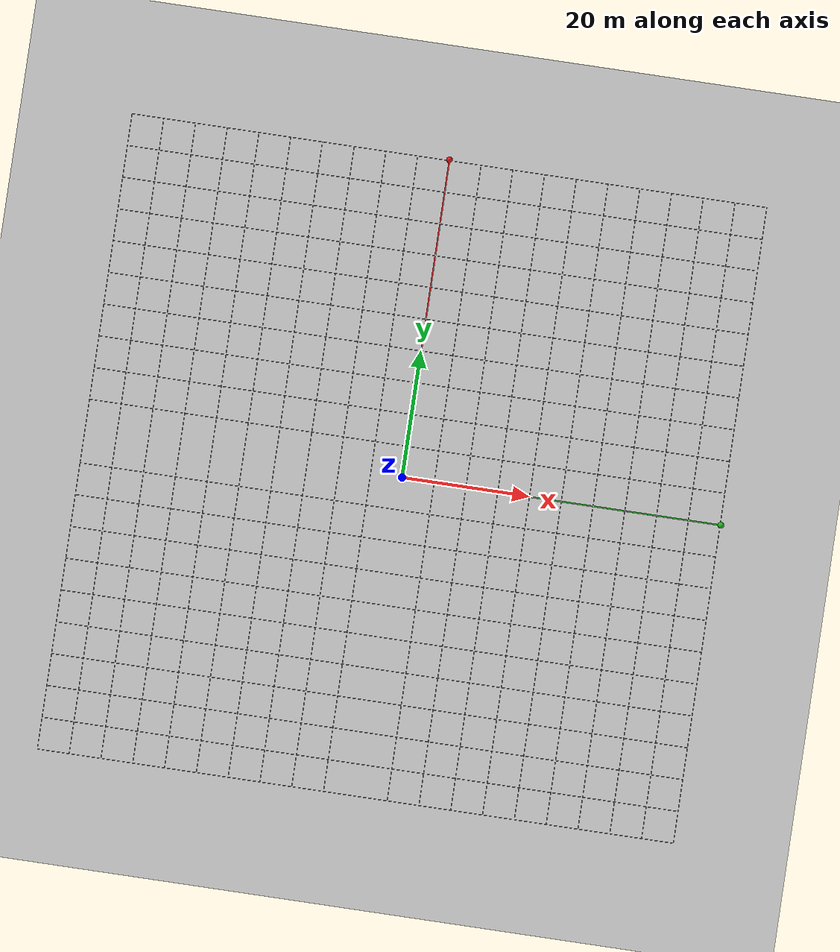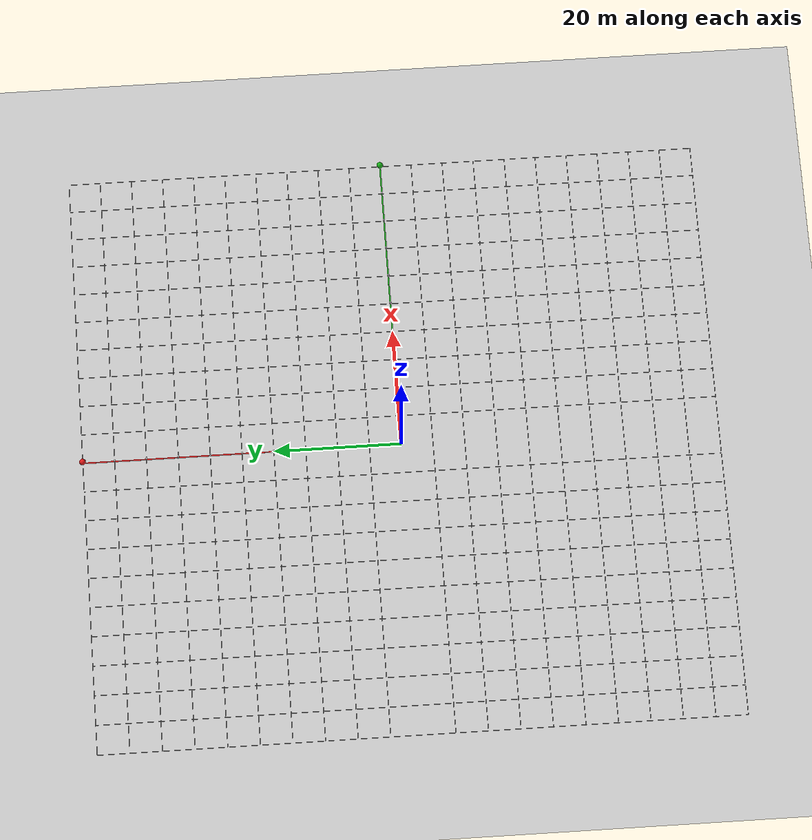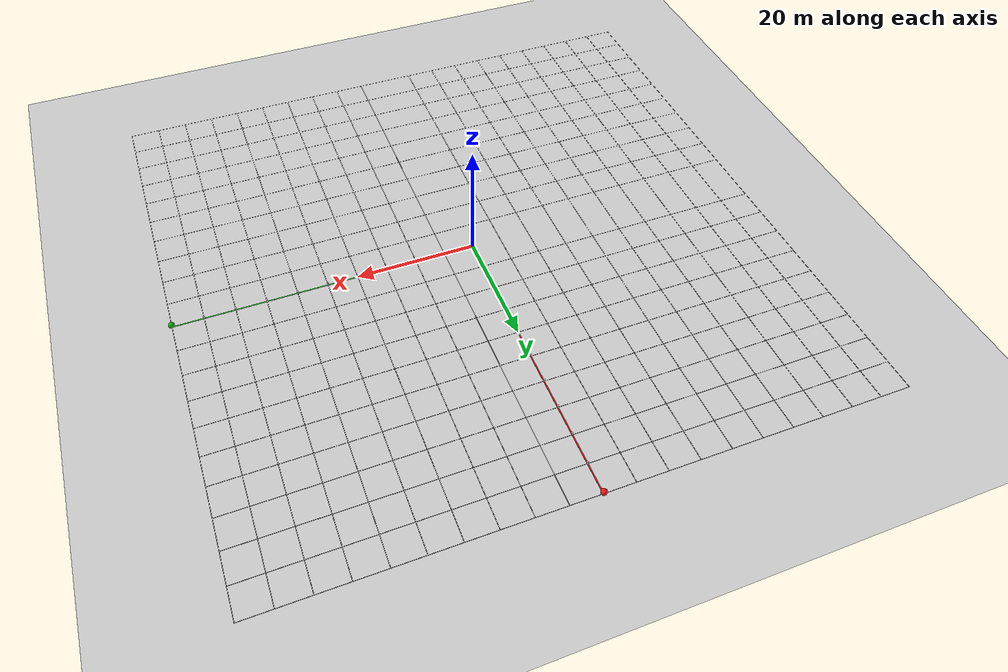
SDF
<?xml version="1.0" encoding="UTF-8"?>
<sdf version="1.9">
  <world name="trajectory_grid">
    <physics type="ode">
      <max_step_size>0.004</max_step_size>
      <real_time_factor>1.0</real_time_factor>
      <real_time_update_rate>250</real_time_update_rate>
    </physics>
    <gravity>0 0 -9.8</gravity>
    <magnetic_field>6e-06 2.3e-05 -4.2e-05</magnetic_field>
    <atmosphere type="adiabatic"/>
    <scene>
      <grid>false</grid>
      <ambient>0.5 0.5 0.5 1</ambient>
      <background>0.53 0.75 0.93 1</background>
      <shadows>true</shadows>
    </scene>
    <model name="ground_plane">
      <static>true</static>
      <link name="link">
        <collision name="collision">
          <geometry><plane><normal>0 0 1</normal><size>1 1</size></plane></geometry>
        </collision>
        <visual name="visual">
          <geometry><plane><normal>0 0 1</normal><size>500 500</size></plane></geometry>
          <material>
            <ambient>0.8 0.8 0.8 1</ambient><diffuse>0.8 0.8 0.8 1</diffuse>
            <specular>0.1 0.1 0.1 1</specular>
          </material>
        </visual>
      </link>
    </model>
    <light name="sunUTC" type="directional">
      <pose>0 0 500 0 -0 0</pose>
      <cast_shadows>true</cast_shadows>
      <intensity>1</intensity>
      <direction>0.001 0.625 -0.78</direction>
      <diffuse>0.904 0.904 0.904 1</diffuse>
      <specular>0.271 0.271 0.271 1</specular>
    </light>
    <spherical_coordinates>
      <surface_model>EARTH_WGS84</surface_model>
      <world_frame_orientation>ENU</world_frame_orientation>
      <latitude_deg>47.397971057728974</latitude_deg>
      <longitude_deg>8.546163739800146</longitude_deg>
      <elevation>488</elevation>
    </spherical_coordinates>
    <model name="grid_e_1"><static>true</static><pose>-50.000 0.000 0.005 0 0 0</pose>
      <link name="l"><visual name="v"><geometry><box><size>0.06 100 0.01</size></box></geometry>
        <material><ambient>0.35 0.35 0.35 1</ambient><diffuse>0.35 0.35 0.35 1</diffuse><emissive>0.35 0.35 0.35 1</emissive></material>
      </visual></link></model>
    <model name="grid_n_2"><static>true</static><pose>0.000 -50.000 0.005 0 0 0</pose>
      <link name="l"><visual name="v"><geometry><box><size>100 0.06 0.01</size></box></geometry>
        <material><ambient>0.35 0.35 0.35 1</ambient><diffuse>0.35 0.35 0.35 1</diffuse><emissive>0.35 0.35 0.35 1</emissive></material>
      </visual></link></model>
    <model name="grid_e_3"><static>true</static><pose>-45.000 0.000 0.005 0 0 0</pose>
      <link name="l"><visual name="v"><geometry><box><size>0.06 100 0.01</size></box></geometry>
        <material><ambient>0.35 0.35 0.35 1</ambient><diffuse>0.35 0.35 0.35 1</diffuse><emissive>0.35 0.35 0.35 1</emissive></material>
      </visual></link></model>
    <model name="grid_n_4"><static>true</static><pose>0.000 -45.000 0.005 0 0 0</pose>
      <link name="l"><visual name="v"><geometry><box><size>100 0.06 0.01</size></box></geometry>
        <material><ambient>0.35 0.35 0.35 1</ambient><diffuse>0.35 0.35 0.35 1</diffuse><emissive>0.35 0.35 0.35 1</emissive></material>
      </visual></link></model>
    <model name="grid_e_5"><static>true</static><pose>-40.000 0.000 0.005 0 0 0</pose>
      <link name="l"><visual name="v"><geometry><box><size>0.06 100 0.01</size></box></geometry>
        <material><ambient>0.35 0.35 0.35 1</ambient><diffuse>0.35 0.35 0.35 1</diffuse><emissive>0.35 0.35 0.35 1</emissive></material>
      </visual></link></model>
    <model name="grid_n_6"><static>true</static><pose>0.000 -40.000 0.005 0 0 0</pose>
      <link name="l"><visual name="v"><geometry><box><size>100 0.06 0.01</size></box></geometry>
        <material><ambient>0.35 0.35 0.35 1</ambient><diffuse>0.35 0.35 0.35 1</diffuse><emissive>0.35 0.35 0.35 1</emissive></material>
      </visual></link></model>
    <model name="grid_e_7"><static>true</static><pose>-35.000 0.000 0.005 0 0 0</pose>
      <link name="l"><visual name="v"><geometry><box><size>0.06 100 0.01</size></box></geometry>
        <material><ambient>0.35 0.35 0.35 1</ambient><diffuse>0.35 0.35 0.35 1</diffuse><emissive>0.35 0.35 0.35 1</emissive></material>
      </visual></link></model>
    <model name="grid_n_8"><static>true</static><pose>0.000 -35.000 0.005 0 0 0</pose>
      <link name="l"><visual name="v"><geometry><box><size>100 0.06 0.01</size></box></geometry>
        <material><ambient>0.35 0.35 0.35 1</ambient><diffuse>0.35 0.35 0.35 1</diffuse><emissive>0.35 0.35 0.35 1</emissive></material>
      </visual></link></model>
    <model name="grid_e_9"><static>true</static><pose>-30.000 0.000 0.005 0 0 0</pose>
      <link name="l"><visual name="v"><geometry><box><size>0.06 100 0.01</size></box></geometry>
        <material><ambient>0.35 0.35 0.35 1</ambient><diffuse>0.35 0.35 0.35 1</diffuse><emissive>0.35 0.35 0.35 1</emissive></material>
      </visual></link></model>
    <model name="grid_n_10"><static>true</static><pose>0.000 -30.000 0.005 0 0 0</pose>
      <link name="l"><visual name="v"><geometry><box><size>100 0.06 0.01</size></box></geometry>
        <material><ambient>0.35 0.35 0.35 1</ambient><diffuse>0.35 0.35 0.35 1</diffuse><emissive>0.35 0.35 0.35 1</emissive></material>
      </visual></link></model>
    <model name="grid_e_11"><static>true</static><pose>-25.000 0.000 0.005 0 0 0</pose>
      <link name="l"><visual name="v"><geometry><box><size>0.06 100 0.01</size></box></geometry>
        <material><ambient>0.35 0.35 0.35 1</ambient><diffuse>0.35 0.35 0.35 1</diffuse><emissive>0.35 0.35 0.35 1</emissive></material>
      </visual></link></model>
    <model name="grid_n_12"><static>true</static><pose>0.000 -25.000 0.005 0 0 0</pose>
      <link name="l"><visual name="v"><geometry><box><size>100 0.06 0.01</size></box></geometry>
        <material><ambient>0.35 0.35 0.35 1</ambient><diffuse>0.35 0.35 0.35 1</diffuse><emissive>0.35 0.35 0.35 1</emissive></material>
      </visual></link></model>
    <model name="grid_e_13"><static>true</static><pose>-20.000 0.000 0.005 0 0 0</pose>
      <link name="l"><visual name="v"><geometry><box><size>0.06 100 0.01</size></box></geometry>
        <material><ambient>0.35 0.35 0.35 1</ambient><diffuse>0.35 0.35 0.35 1</diffuse><emissive>0.35 0.35 0.35 1</emissive></material>
      </visual></link></model>
    <model name="grid_n_14"><static>true</static><pose>0.000 -20.000 0.005 0 0 0</pose>
      <link name="l"><visual name="v"><geometry><box><size>100 0.06 0.01</size></box></geometry>
        <material><ambient>0.35 0.35 0.35 1</ambient><diffuse>0.35 0.35 0.35 1</diffuse><emissive>0.35 0.35 0.35 1</emissive></material>
      </visual></link></model>
    <model name="grid_e_15"><static>true</static><pose>-15.000 0.000 0.005 0 0 0</pose>
      <link name="l"><visual name="v"><geometry><box><size>0.06 100 0.01</size></box></geometry>
        <material><ambient>0.35 0.35 0.35 1</ambient><diffuse>0.35 0.35 0.35 1</diffuse><emissive>0.35 0.35 0.35 1</emissive></material>
      </visual></link></model>
    <model name="grid_n_16"><static>true</static><pose>0.000 -15.000 0.005 0 0 0</pose>
      <link name="l"><visual name="v"><geometry><box><size>100 0.06 0.01</size></box></geometry>
        <material><ambient>0.35 0.35 0.35 1</ambient><diffuse>0.35 0.35 0.35 1</diffuse><emissive>0.35 0.35 0.35 1</emissive></material>
      </visual></link></model>
    <model name="grid_e_17"><static>true</static><pose>-10.000 0.000 0.005 0 0 0</pose>
      <link name="l"><visual name="v"><geometry><box><size>0.06 100 0.01</size></box></geometry>
        <material><ambient>0.35 0.35 0.35 1</ambient><diffuse>0.35 0.35 0.35 1</diffuse><emissive>0.35 0.35 0.35 1</emissive></material>
      </visual></link></model>
    <model name="grid_n_18"><static>true</static><pose>0.000 -10.000 0.005 0 0 0</pose>
      <link name="l"><visual name="v"><geometry><box><size>100 0.06 0.01</size></box></geometry>
        <material><ambient>0.35 0.35 0.35 1</ambient><diffuse>0.35 0.35 0.35 1</diffuse><emissive>0.35 0.35 0.35 1</emissive></material>
      </visual></link></model>
    <model name="grid_e_19"><static>true</static><pose>-5.000 0.000 0.005 0 0 0</pose>
      <link name="l"><visual name="v"><geometry><box><size>0.06 100 0.01</size></box></geometry>
        <material><ambient>0.35 0.35 0.35 1</ambient><diffuse>0.35 0.35 0.35 1</diffuse><emissive>0.35 0.35 0.35 1</emissive></material>
      </visual></link></model>
    <model name="grid_n_20"><static>true</static><pose>0.000 -5.000 0.005 0 0 0</pose>
      <link name="l"><visual name="v"><geometry><box><size>100 0.06 0.01</size></box></geometry>
        <material><ambient>0.35 0.35 0.35 1</ambient><diffuse>0.35 0.35 0.35 1</diffuse><emissive>0.35 0.35 0.35 1</emissive></material>
      </visual></link></model>
    <model name="grid_e_21"><static>true</static><pose>5.000 0.000 0.005 0 0 0</pose>
      <link name="l"><visual name="v"><geometry><box><size>0.06 100 0.01</size></box></geometry>
        <material><ambient>0.35 0.35 0.35 1</ambient><diffuse>0.35 0.35 0.35 1</diffuse><emissive>0.35 0.35 0.35 1</emissive></material>
      </visual></link></model>
    <model name="grid_n_22"><static>true</static><pose>0.000 5.000 0.005 0 0 0</pose>
      <link name="l"><visual name="v"><geometry><box><size>100 0.06 0.01</size></box></geometry>
        <material><ambient>0.35 0.35 0.35 1</ambient><diffuse>0.35 0.35 0.35 1</diffuse><emissive>0.35 0.35 0.35 1</emissive></material>
      </visual></link></model>
    <model name="grid_e_23"><static>true</static><pose>10.000 0.000 0.005 0 0 0</pose>
      <link name="l"><visual name="v"><geometry><box><size>0.06 100 0.01</size></box></geometry>
        <material><ambient>0.35 0.35 0.35 1</ambient><diffuse>0.35 0.35 0.35 1</diffuse><emissive>0.35 0.35 0.35 1</emissive></material>
      </visual></link></model>
    <model name="grid_n_24"><static>true</static><pose>0.000 10.000 0.005 0 0 0</pose>
      <link name="l"><visual name="v"><geometry><box><size>100 0.06 0.01</size></box></geometry>
        <material><ambient>0.35 0.35 0.35 1</ambient><diffuse>0.35 0.35 0.35 1</diffuse><emissive>0.35 0.35 0.35 1</emissive></material>
      </visual></link></model>
    <model name="grid_e_25"><static>true</static><pose>15.000 0.000 0.005 0 0 0</pose>
      <link name="l"><visual name="v"><geometry><box><size>0.06 100 0.01</size></box></geometry>
        <material><ambient>0.35 0.35 0.35 1</ambient><diffuse>0.35 0.35 0.35 1</diffuse><emissive>0.35 0.35 0.35 1</emissive></material>
      </visual></link></model>
    <model name="grid_n_26"><static>true</static><pose>0.000 15.000 0.005 0 0 0</pose>
      <link name="l"><visual name="v"><geometry><box><size>100 0.06 0.01</size></box></geometry>
        <material><ambient>0.35 0.35 0.35 1</ambient><diffuse>0.35 0.35 0.35 1</diffuse><emissive>0.35 0.35 0.35 1</emissive></material>
      </visual></link></model>
    <model name="grid_e_27"><static>true</static><pose>20.000 0.000 0.005 0 0 0</pose>
      <link name="l"><visual name="v"><geometry><box><size>0.06 100 0.01</size></box></geometry>
        <material><ambient>0.35 0.35 0.35 1</ambient><diffuse>0.35 0.35 0.35 1</diffuse><emissive>0.35 0.35 0.35 1</emissive></material>
      </visual></link></model>
    <model name="grid_n_28"><static>true</static><pose>0.000 20.000 0.005 0 0 0</pose>
      <link name="l"><visual name="v"><geometry><box><size>100 0.06 0.01</size></box></geometry>
        <material><ambient>0.35 0.35 0.35 1</ambient><diffuse>0.35 0.35 0.35 1</diffuse><emissive>0.35 0.35 0.35 1</emissive></material>
      </visual></link></model>
    <model name="grid_e_29"><static>true</static><pose>25.000 0.000 0.005 0 0 0</pose>
      <link name="l"><visual name="v"><geometry><box><size>0.06 100 0.01</size></box></geometry>
        <material><ambient>0.35 0.35 0.35 1</ambient><diffuse>0.35 0.35 0.35 1</diffuse><emissive>0.35 0.35 0.35 1</emissive></material>
      </visual></link></model>
    <model name="grid_n_30"><static>true</static><pose>0.000 25.000 0.005 0 0 0</pose>
      <link name="l"><visual name="v"><geometry><box><size>100 0.06 0.01</size></box></geometry>
        <material><ambient>0.35 0.35 0.35 1</ambient><diffuse>0.35 0.35 0.35 1</diffuse><emissive>0.35 0.35 0.35 1</emissive></material>
      </visual></link></model>
    <model name="grid_e_31"><static>true</static><pose>30.000 0.000 0.005 0 0 0</pose>
      <link name="l"><visual name="v"><geometry><box><size>0.06 100 0.01</size></box></geometry>
        <material><ambient>0.35 0.35 0.35 1</ambient><diffuse>0.35 0.35 0.35 1</diffuse><emissive>0.35 0.35 0.35 1</emissive></material>
      </visual></link></model>
    <model name="grid_n_32"><static>true</static><pose>0.000 30.000 0.005 0 0 0</pose>
      <link name="l"><visual name="v"><geometry><box><size>100 0.06 0.01</size></box></geometry>
        <material><ambient>0.35 0.35 0.35 1</ambient><diffuse>0.35 0.35 0.35 1</diffuse><emissive>0.35 0.35 0.35 1</emissive></material>
      </visual></link></model>
    <model name="grid_e_33"><static>true</static><pose>35.000 0.000 0.005 0 0 0</pose>
      <link name="l"><visual name="v"><geometry><box><size>0.06 100 0.01</size></box></geometry>
        <material><ambient>0.35 0.35 0.35 1</ambient><diffuse>0.35 0.35 0.35 1</diffuse><emissive>0.35 0.35 0.35 1</emissive></material>
      </visual></link></model>
    <model name="grid_n_34"><static>true</static><pose>0.000 35.000 0.005 0 0 0</pose>
      <link name="l"><visual name="v"><geometry><box><size>100 0.06 0.01</size></box></geometry>
        <material><ambient>0.35 0.35 0.35 1</ambient><diffuse>0.35 0.35 0.35 1</diffuse><emissive>0.35 0.35 0.35 1</emissive></material>
      </visual></link></model>
    <model name="grid_e_35"><static>true</static><pose>40.000 0.000 0.005 0 0 0</pose>
      <link name="l"><visual name="v"><geometry><box><size>0.06 100 0.01</size></box></geometry>
        <material><ambient>0.35 0.35 0.35 1</ambient><diffuse>0.35 0.35 0.35 1</diffuse><emissive>0.35 0.35 0.35 1</emissive></material>
      </visual></link></model>
    <model name="grid_n_36"><static>true</static><pose>0.000 40.000 0.005 0 0 0</pose>
      <link name="l"><visual name="v"><geometry><box><size>100 0.06 0.01</size></box></geometry>
        <material><ambient>0.35 0.35 0.35 1</ambient><diffuse>0.35 0.35 0.35 1</diffuse><emissive>0.35 0.35 0.35 1</emissive></material>
      </visual></link></model>
    <model name="grid_e_37"><static>true</static><pose>45.000 0.000 0.005 0 0 0</pose>
      <link name="l"><visual name="v"><geometry><box><size>0.06 100 0.01</size></box></geometry>
        <material><ambient>0.35 0.35 0.35 1</ambient><diffuse>0.35 0.35 0.35 1</diffuse><emissive>0.35 0.35 0.35 1</emissive></material>
      </visual></link></model>
    <model name="grid_n_38"><static>true</static><pose>0.000 45.000 0.005 0 0 0</pose>
      <link name="l"><visual name="v"><geometry><box><size>100 0.06 0.01</size></box></geometry>
        <material><ambient>0.35 0.35 0.35 1</ambient><diffuse>0.35 0.35 0.35 1</diffuse><emissive>0.35 0.35 0.35 1</emissive></material>
      </visual></link></model>
    <model name="grid_e_39"><static>true</static><pose>50.000 0.000 0.005 0 0 0</pose>
      <link name="l"><visual name="v"><geometry><box><size>0.06 100 0.01</size></box></geometry>
        <material><ambient>0.35 0.35 0.35 1</ambient><diffuse>0.35 0.35 0.35 1</diffuse><emissive>0.35 0.35 0.35 1</emissive></material>
      </visual></link></model>
    <model name="grid_n_40"><static>true</static><pose>0.000 50.000 0.005 0 0 0</pose>
      <link name="l"><visual name="v"><geometry><box><size>100 0.06 0.01</size></box></geometry>
        <material><ambient>0.35 0.35 0.35 1</ambient><diffuse>0.35 0.35 0.35 1</diffuse><emissive>0.35 0.35 0.35 1</emissive></material>
      </visual></link></model>
    <model name="axis_north_41"><static>true</static><pose>0.000 25.000 0.010 0 0 0</pose>
      <link name="l"><visual name="v"><geometry><box><size>0.2 50 0.01</size></box></geometry>
        <material><ambient>0.9 0.1 0.1 1</ambient><diffuse>0.9 0.1 0.1 1</diffuse><emissive>0.9 0.1 0.1 1</emissive></material>
      </visual></link></model>
    <model name="axis_east_42"><static>true</static><pose>25.000 0.000 0.010 0 0 0</pose>
      <link name="l"><visual name="v"><geometry><box><size>50 0.2 0.01</size></box></geometry>
        <material><ambient>0.1 0.7 0.1 1</ambient><diffuse>0.1 0.7 0.1 1</diffuse><emissive>0.1 0.7 0.1 1</emissive></material>
      </visual></link></model>
    <model name="north_tip_43"><static>true</static><pose>0.000 50.000 0.500 0 0 0</pose>
      <link name="l"><visual name="v"><geometry><sphere><radius>0.5</radius></sphere></geometry>
        <material><ambient>0.9 0.1 0.1 1</ambient><diffuse>0.9 0.1 0.1 1</diffuse><emissive>0.9 0.1 0.1 1</emissive></material>
      </visual></link></model>
    <model name="east_tip_44"><static>true</static><pose>50.000 0.000 0.500 0 0 0</pose>
      <link name="l"><visual name="v"><geometry><sphere><radius>0.5</radius></sphere></geometry>
        <material><ambient>0.1 0.7 0.1 1</ambient><diffuse>0.1 0.7 0.1 1</diffuse><emissive>0.1 0.7 0.1 1</emissive></material>
      </visual></link></model>
    <model name="tick_n_45"><static>true</static><pose>0.000 5.000 0.250 0 0 0</pose>
      <link name="l"><visual name="v"><geometry><cylinder><radius>0.12</radius><length>0.5</length></cylinder></geometry>
        <material><ambient>1 1 1 1</ambient><diffuse>1 1 1 1</diffuse><emissive>1 1 1 1</emissive></material>
      </visual></link></model>
    <model name="tick_e_46"><static>true</static><pose>5.000 0.000 0.250 0 0 0</pose>
      <link name="l"><visual name="v"><geometry><cylinder><radius>0.12</radius><length>0.5</length></cylinder></geometry>
        <material><ambient>1 1 1 1</ambient><diffuse>1 1 1 1</diffuse><emissive>1 1 1 1</emissive></material>
      </visual></link></model>
    <model name="tick_n_47"><static>true</static><pose>0.000 10.000 0.250 0 0 0</pose>
      <link name="l"><visual name="v"><geometry><cylinder><radius>0.12</radius><length>0.5</length></cylinder></geometry>
        <material><ambient>1 1 1 1</ambient><diffuse>1 1 1 1</diffuse><emissive>1 1 1 1</emissive></material>
      </visual></link></model>
    <model name="tick_e_48"><static>true</static><pose>10.000 0.000 0.250 0 0 0</pose>
      <link name="l"><visual name="v"><geometry><cylinder><radius>0.12</radius><length>0.5</length></cylinder></geometry>
        <material><ambient>1 1 1 1</ambient><diffuse>1 1 1 1</diffuse><emissive>1 1 1 1</emissive></material>
      </visual></link></model>
    <model name="tick_n_49"><static>true</static><pose>0.000 15.000 0.250 0 0 0</pose>
      <link name="l"><visual name="v"><geometry><cylinder><radius>0.12</radius><length>0.5</length></cylinder></geometry>
        <material><ambient>1 1 1 1</ambient><diffuse>1 1 1 1</diffuse><emissive>1 1 1 1</emissive></material>
      </visual></link></model>
    <model name="tick_e_50"><static>true</static><pose>15.000 0.000 0.250 0 0 0</pose>
      <link name="l"><visual name="v"><geometry><cylinder><radius>0.12</radius><length>0.5</length></cylinder></geometry>
        <material><ambient>1 1 1 1</ambient><diffuse>1 1 1 1</diffuse><emissive>1 1 1 1</emissive></material>
      </visual></link></model>
    <model name="tick_n_51"><static>true</static><pose>0.000 20.000 0.250 0 0 0</pose>
      <link name="l"><visual name="v"><geometry><cylinder><radius>0.12</radius><length>0.5</length></cylinder></geometry>
        <material><ambient>1 1 1 1</ambient><diffuse>1 1 1 1</diffuse><emissive>1 1 1 1</emissive></material>
      </visual></link></model>
    <model name="tick_e_52"><static>true</static><pose>20.000 0.000 0.250 0 0 0</pose>
      <link name="l"><visual name="v"><geometry><cylinder><radius>0.12</radius><length>0.5</length></cylinder></geometry>
        <material><ambient>1 1 1 1</ambient><diffuse>1 1 1 1</diffuse><emissive>1 1 1 1</emissive></material>
      </visual></link></model>
    <model name="tick_n_53"><static>true</static><pose>0.000 25.000 0.250 0 0 0</pose>
      <link name="l"><visual name="v"><geometry><cylinder><radius>0.12</radius><length>0.5</length></cylinder></geometry>
        <material><ambient>1 1 1 1</ambient><diffuse>1 1 1 1</diffuse><emissive>1 1 1 1</emissive></material>
      </visual></link></model>
    <model name="tick_e_54"><static>true</static><pose>25.000 0.000 0.250 0 0 0</pose>
      <link name="l"><visual name="v"><geometry><cylinder><radius>0.12</radius><length>0.5</length></cylinder></geometry>
        <material><ambient>1 1 1 1</ambient><diffuse>1 1 1 1</diffuse><emissive>1 1 1 1</emissive></material>
      </visual></link></model>
    <model name="tick_n_55"><static>true</static><pose>0.000 30.000 0.250 0 0 0</pose>
      <link name="l"><visual name="v"><geometry><cylinder><radius>0.12</radius><length>0.5</length></cylinder></geometry>
        <material><ambient>1 1 1 1</ambient><diffuse>1 1 1 1</diffuse><emissive>1 1 1 1</emissive></material>
      </visual></link></model>
    <model name="tick_e_56"><static>true</static><pose>30.000 0.000 0.250 0 0 0</pose>
      <link name="l"><visual name="v"><geometry><cylinder><radius>0.12</radius><length>0.5</length></cylinder></geometry>
        <material><ambient>1 1 1 1</ambient><diffuse>1 1 1 1</diffuse><emissive>1 1 1 1</emissive></material>
      </visual></link></model>
    <model name="tick_n_57"><static>true</static><pose>0.000 35.000 0.250 0 0 0</pose>
      <link name="l"><visual name="v"><geometry><cylinder><radius>0.12</radius><length>0.5</length></cylinder></geometry>
        <material><ambient>1 1 1 1</ambient><diffuse>1 1 1 1</diffuse><emissive>1 1 1 1</emissive></material>
      </visual></link></model>
    <model name="tick_e_58"><static>true</static><pose>35.000 0.000 0.250 0 0 0</pose>
      <link name="l"><visual name="v"><geometry><cylinder><radius>0.12</radius><length>0.5</length></cylinder></geometry>
        <material><ambient>1 1 1 1</ambient><diffuse>1 1 1 1</diffuse><emissive>1 1 1 1</emissive></material>
      </visual></link></model>
    <model name="tick_n_59"><static>true</static><pose>0.000 40.000 0.250 0 0 0</pose>
      <link name="l"><visual name="v"><geometry><cylinder><radius>0.12</radius><length>0.5</length></cylinder></geometry>
        <material><ambient>1 1 1 1</ambient><diffuse>1 1 1 1</diffuse><emissive>1 1 1 1</emissive></material>
      </visual></link></model>
    <model name="tick_e_60"><static>true</static><pose>40.000 0.000 0.250 0 0 0</pose>
      <link name="l"><visual name="v"><geometry><cylinder><radius>0.12</radius><length>0.5</length></cylinder></geometry>
        <material><ambient>1 1 1 1</ambient><diffuse>1 1 1 1</diffuse><emissive>1 1 1 1</emissive></material>
      </visual></link></model>
    <model name="tick_n_61"><static>true</static><pose>0.000 45.000 0.250 0 0 0</pose>
      <link name="l"><visual name="v"><geometry><cylinder><radius>0.12</radius><length>0.5</length></cylinder></geometry>
        <material><ambient>1 1 1 1</ambient><diffuse>1 1 1 1</diffuse><emissive>1 1 1 1</emissive></material>
      </visual></link></model>
    <model name="tick_e_62"><static>true</static><pose>45.000 0.000 0.250 0 0 0</pose>
      <link name="l"><visual name="v"><geometry><cylinder><radius>0.12</radius><length>0.5</length></cylinder></geometry>
        <material><ambient>1 1 1 1</ambient><diffuse>1 1 1 1</diffuse><emissive>1 1 1 1</emissive></material>
      </visual></link></model>
    <model name="tick_n_63"><static>true</static><pose>0.000 50.000 0.250 0 0 0</pose>
      <link name="l"><visual name="v"><geometry><cylinder><radius>0.12</radius><length>0.5</length></cylinder></geometry>
        <material><ambient>1 1 1 1</ambient><diffuse>1 1 1 1</diffuse><emissive>1 1 1 1</emissive></material>
      </visual></link></model>
    <model name="tick_e_64"><static>true</static><pose>50.000 0.000 0.250 0 0 0</pose>
      <link name="l"><visual name="v"><geometry><cylinder><radius>0.12</radius><length>0.5</length></cylinder></geometry>
        <material><ambient>1 1 1 1</ambient><diffuse>1 1 1 1</diffuse><emissive>1 1 1 1</emissive></material>
      </visual></link></model>
  </world>
</sdf>
